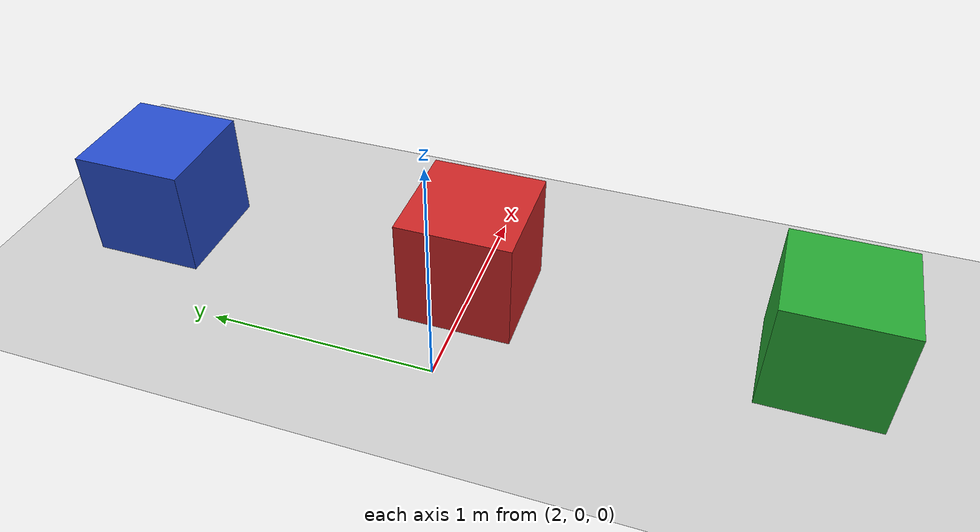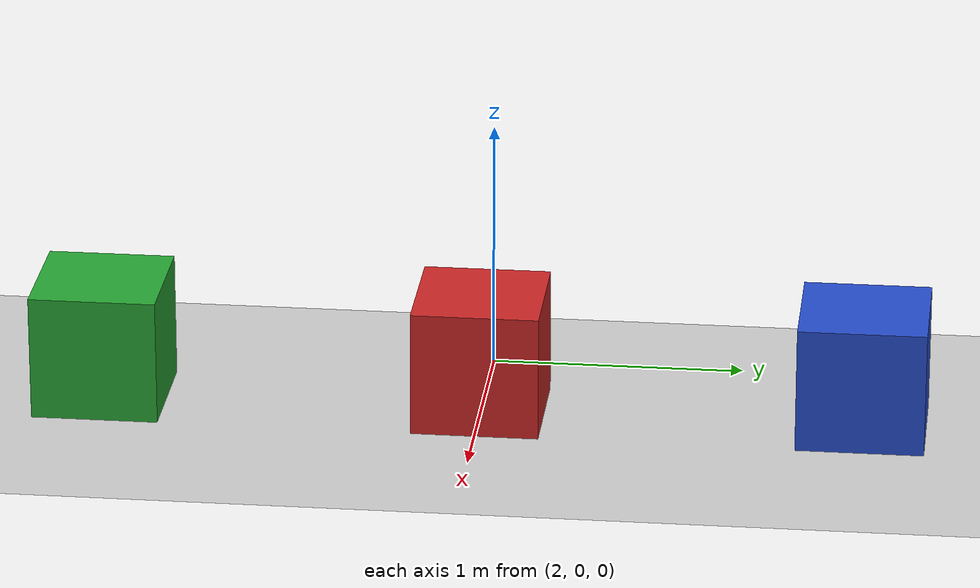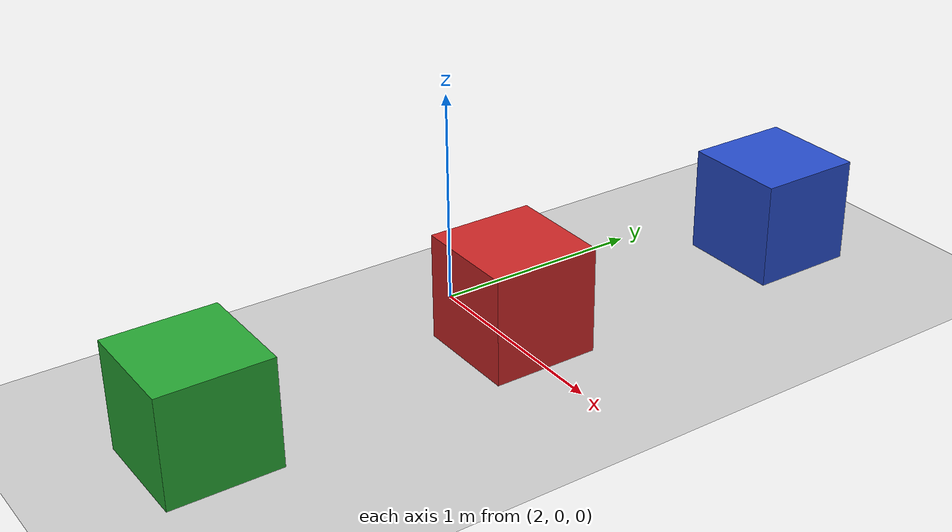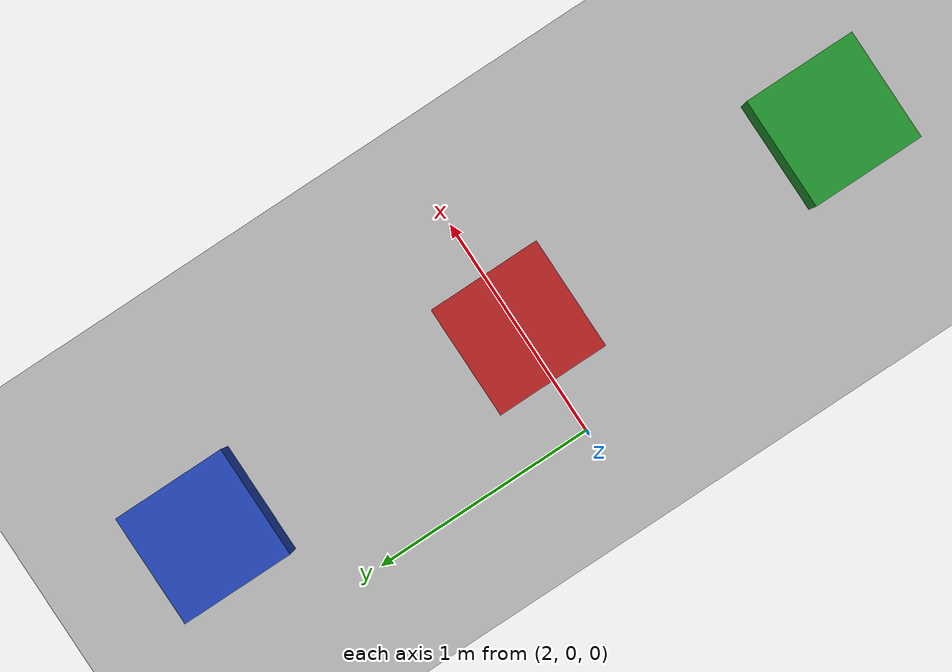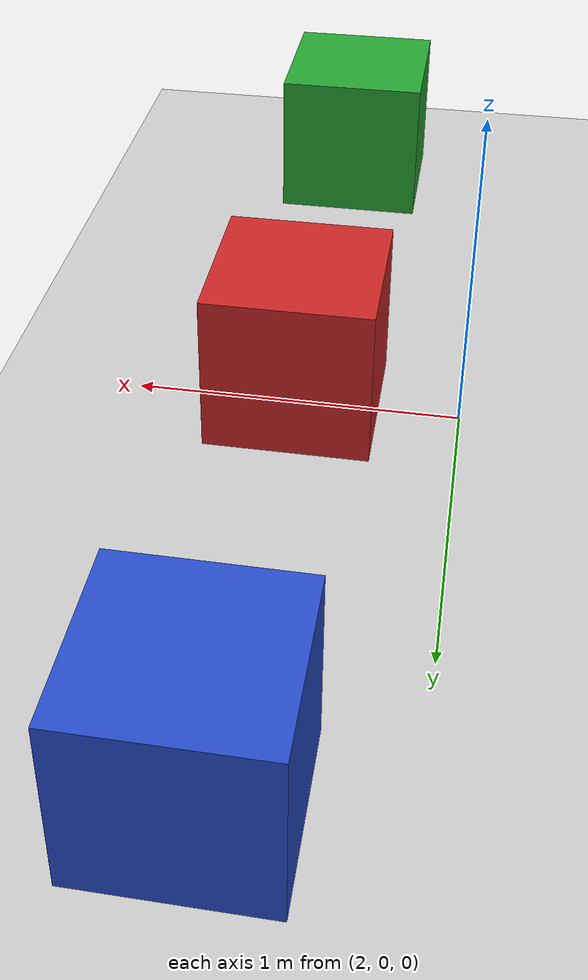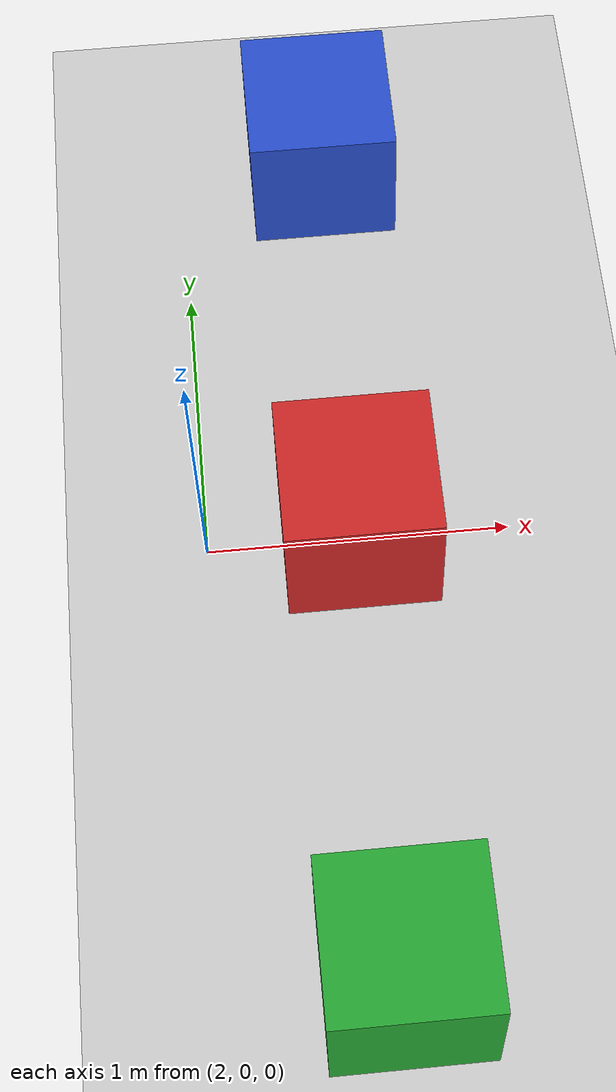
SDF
<?xml version="1.0" ?>
<sdf version="1.6">
  <world name="default">
    <include>
      <uri>model://sun</uri>
    </include>

    <include>
      <uri>model://ground_plane</uri>
    </include>

    <plugin name="gazebo_ros_state" filename="libgazebo_ros_state.so">
      <ros>
        <namespace>/gazebo</namespace>
      </ros>
      <update_rate>10.0</update_rate>
    </plugin>

    <gui fullscreen='0'>
      <camera name='user_camera'>
        <pose>-3.0 0.0 4.0 0 0.7 0</pose>
        <view_controller>orbit</view_controller>
      </camera>
    </gui>

    <model name='box_center'>
      <pose>2.5 0.0 0.25 0 0 0</pose>
      <static>true</static>
      <link name='link'>
        <collision name='collision'>
          <geometry><box><size>0.5 0.5 0.5</size></box></geometry>
        </collision>
        <visual name='visual'>
          <geometry><box><size>0.5 0.5 0.5</size></box></geometry>
          <material>
            <script><uri>file://media/materials/scripts/gazebo.material</uri><name>Gazebo/Red</name></script>
          </material>
        </visual>
      </link>
    </model>

    <model name='box_left'>
      <pose>2.5 1.5 0.25 0 0 0</pose>
      <static>true</static>
      <link name='link'>
        <collision name='collision'>
          <geometry><box><size>0.5 0.5 0.5</size></box></geometry>
        </collision>
        <visual name='visual'>
          <geometry><box><size>0.5 0.5 0.5</size></box></geometry>
          <material>
            <script><uri>file://media/materials/scripts/gazebo.material</uri><name>Gazebo/Blue</name></script>
          </material>
        </visual>
      </link>
    </model>

    <model name='box_right'>
      <pose>2.5 -1.5 0.25 0 0 0</pose>
      <static>true</static>
      <link name='link'>
        <collision name='collision'>
          <geometry><box><size>0.5 0.5 0.5</size></box></geometry>
        </collision>
        <visual name='visual'>
          <geometry><box><size>0.5 0.5 0.5</size></box></geometry>
          <material>
            <script><uri>file://media/materials/scripts/gazebo.material</uri><name>Gazebo/Green</name></script>
          </material>
        </visual>
      </link>
    </model>

  </world>
</sdf>
